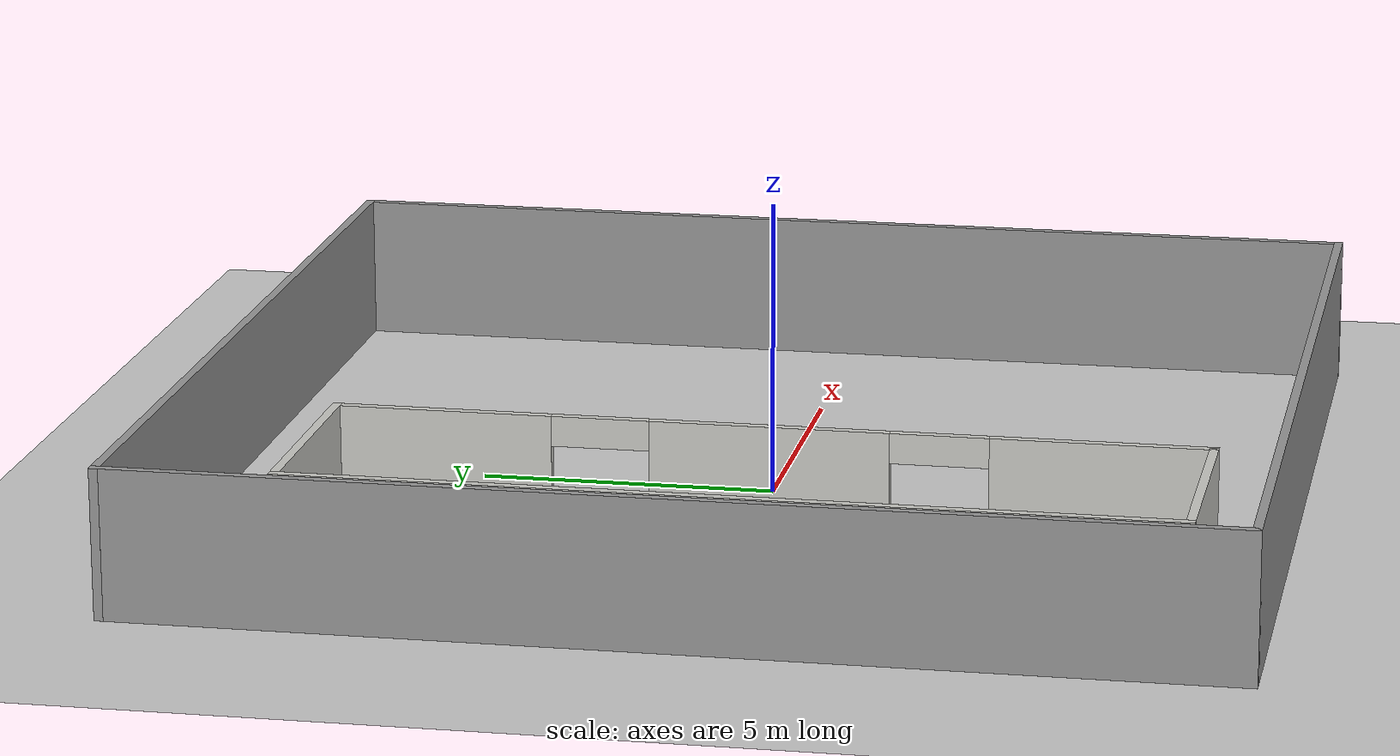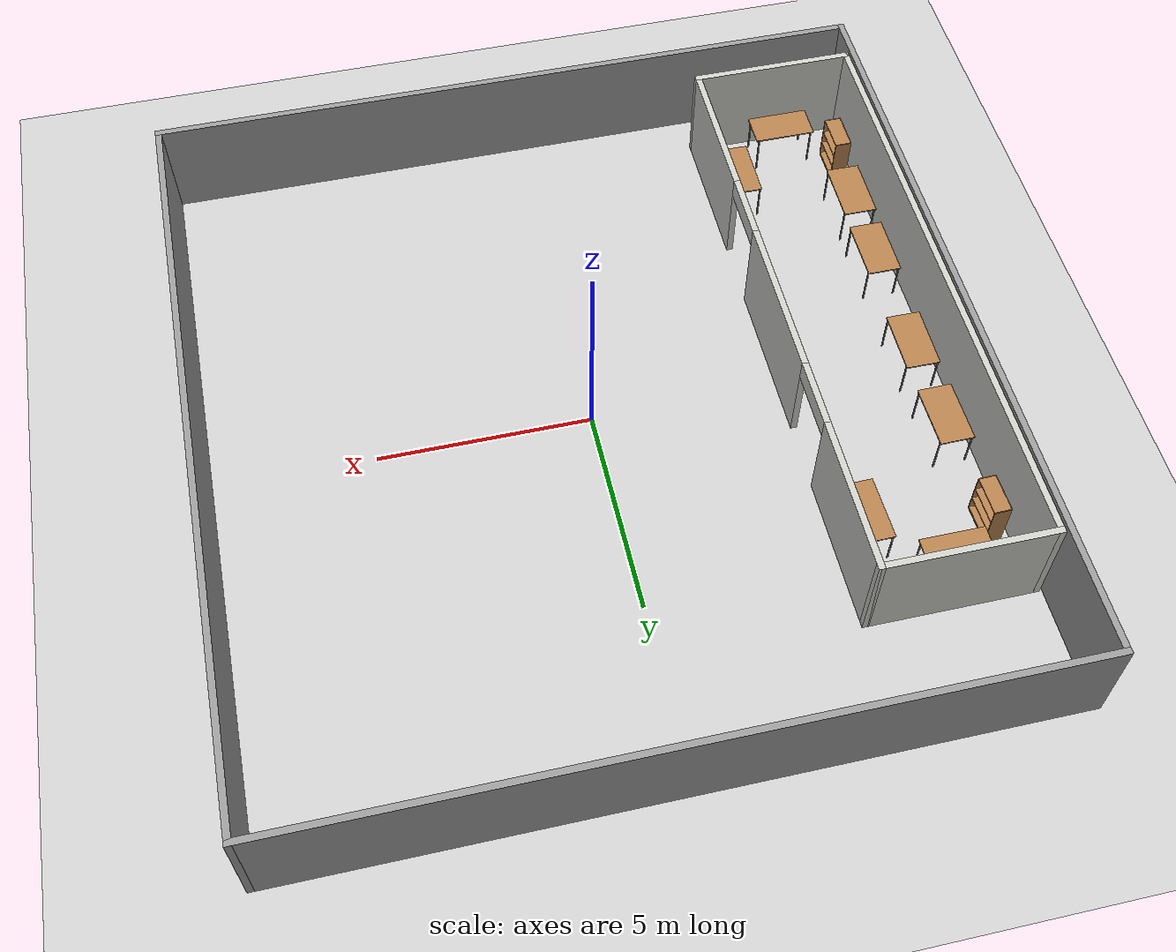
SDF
<sdf version="1.7">
 <world name="default">
  <light name="sun" type="directional">
   <pose>0 0 10 0 -0 0</pose>
   <diffuse>0.8 0.8 0.8 1</diffuse>
   <specular>0.2 0.2 0.2 1</specular>
   <attenuation>
    <range>1000</range>
    <constant>0.9</constant>
    <linear>0.01</linear>
    <quadratic>0.001</quadratic>
   </attenuation>
   <direction>-0.5 0.1 -0.9</direction>
   <spot><inner_angle>0</inner_angle><outer_angle>0</outer_angle><falloff>0</falloff></spot>
  </light>
  <model name="ground_plane">
   <static>1</static>
   <link name="link">
    <collision name="collision">
     <geometry><plane><normal>0 0 1</normal><size>100 100</size></plane></geometry>
     <surface>
      <contact><collide_bitmask>65535</collide_bitmask></contact>
      <friction><ode><mu>100</mu><mu2>50</mu2></ode></friction>
     </surface>
    </collision>
    <visual name="visual">
     <cast_shadows>0</cast_shadows>
     <geometry><plane><normal>0 0 1</normal><size>100 100</size></plane></geometry>
     <material>
      <script><uri>file://media/materials/scripts/gazebo.material</uri><name>Gazebo/Grey</name></script>
     </material>
    </visual>
   </link>
  </model>
  <gravity>0 0 -9.8</gravity>
  <magnetic_field>6e-06 2.3e-05 -4.2e-05</magnetic_field>
  <atmosphere type="adiabatic"/>
  <physics type="ode">
   <max_step_size>0.001</max_step_size>
   <real_time_factor>1</real_time_factor>
   <real_time_update_rate>1000</real_time_update_rate>
  </physics>
  <scene><ambient>0.4 0.4 0.4 1</ambient><background>0.7 0.7 0.7 1</background><shadows>1</shadows></scene>
  <spherical_coordinates>
   <surface_model>EARTH_WGS84</surface_model>
   <latitude_deg>0</latitude_deg>
   <longitude_deg>0</longitude_deg>
   <elevation>0</elevation>
   <heading_deg>0</heading_deg>
  </spherical_coordinates>
  <model name="compoung">
   <pose>0.134 0.178 0 0 -0 0</pose>
   <link name="Wall_4">
    <collision name="Wall_4_Collision">
     <geometry><box><size>18.25 0.15 2.5</size></box></geometry>
     <pose>0 0 1.25 0 -0 0</pose>
    </collision>
    <visual name="Wall_4_Visual">
     <pose>0 0 1.25 0 -0 0</pose>
     <geometry><box><size>18.25 0.15 2.5</size></box></geometry>
     <material>
      <script><uri>file://media/materials/scripts/gazebo.material</uri><name>Gazebo/Grey</name></script>
      <ambient>1 1 1 1</ambient>
     </material>
     <meta><layer>0</layer></meta>
    </visual>
    <pose>-8.675 -0 0 0 -0 -1.5708</pose>
   </link>
   <link name="Wall_5">
    <collision name="Wall_5_Collision">
     <geometry><box><size>17.5 0.15 2.5</size></box></geometry>
     <pose>0 0 1.25 0 -0 0</pose>
    </collision>
    <visual name="Wall_5_Visual">
     <pose>0 0 1.25 0 -0 0</pose>
     <geometry><box><size>17.5 0.15 2.5</size></box></geometry>
     <material>
      <script><uri>file://media/materials/scripts/gazebo.material</uri><name>Gazebo/Grey</name></script>
      <ambient>1 1 1 1</ambient>
     </material>
     <meta><layer>0</layer></meta>
    </visual>
    <pose>0 -9.05 0 0 -0 0</pose>
   </link>
   <link name="Wall_6">
    <collision name="Wall_6_Collision">
     <geometry><box><size>18.25 0.15 2.5</size></box></geometry>
     <pose>0 0 1.25 0 -0 0</pose>
    </collision>
    <visual name="Wall_6_Visual">
     <pose>0 0 1.25 0 -0 0</pose>
     <geometry><box><size>18.25 0.15 2.5</size></box></geometry>
     <material>
      <script><uri>file://media/materials/scripts/gazebo.material</uri><name>Gazebo/Grey</name></script>
      <ambient>1 1 1 1</ambient>
     </material>
     <meta><layer>0</layer></meta>
    </visual>
    <pose>8.675 -0 0 0 -0 1.5708</pose>
   </link>
   <link name="Wall_7">
    <collision name="Wall_7_Collision">
     <geometry><box><size>17.5005 0.15 2.5</size></box></geometry>
     <pose>0 0 1.25 0 -0 0</pose>
    </collision>
    <visual name="Wall_7_Visual">
     <pose>0 0 1.25 0 -0 0</pose>
     <geometry><box><size>17.5005 0.15 2.5</size></box></geometry>
     <material>
      <script><uri>file://media/materials/scripts/gazebo.material</uri><name>Gazebo/Grey</name></script>
      <ambient>1 1 1 1</ambient>
     </material>
     <meta><layer>0</layer></meta>
    </visual>
    <pose>0 9.05 0 0 -0 3.14159</pose>
   </link>
   <static>1</static>
  </model>
  <model name="lab_2">
   <pose>-6.40763 -0.724912 0 0 -0 0</pose>
   <link name="Wall_10">
    <collision name="Wall_10_Collision">
     <geometry><box><size>4 0.15 2.5</size></box></geometry>
     <pose>0 0 1.25 0 -0 0</pose>
    </collision>
    <visual name="Wall_10_Visual">
     <pose>0 0 1.25 0 -0 0</pose>
     <geometry><box><size>4 0.15 2.5</size></box></geometry>
     <material>
      <script><uri>file://media/materials/scripts/gazebo.material</uri><name>Gazebo/CeilingTiled</name></script>
      <ambient>1 1 1 1</ambient>
     </material>
     <meta><layer>0</layer></meta>
    </visual>
    <pose>-8.7e-05 -7.125 0 0 -0 3.14159</pose>
   </link>
   <link name="Wall_11">
    <collision name="Wall_11_Collision">
     <geometry><box><size>14.4 0.15 2.5</size></box></geometry>
     <pose>0 0 1.25 0 -0 0</pose>
    </collision>
    <visual name="Wall_11_Visual">
     <pose>0 0 1.25 0 -0 0</pose>
     <geometry><box><size>14.4 0.15 2.5</size></box></geometry>
     <material>
      <script><uri>file://media/materials/scripts/gazebo.material</uri><name>Gazebo/CeilingTiled</name></script>
      <ambient>1 1 1 1</ambient>
     </material>
     <meta><layer>0</layer></meta>
    </visual>
    <pose>-1.92509 -2e-06 0 0 -0 1.5708</pose>
   </link>
   <link name="Wall_13">
    <pose>1.92491 -2e-06 0 0 -0 -1.5708</pose>
    <visual name="Wall_13_Visual_0">
     <pose>-5.37609 0 1.25 0 -0 0</pose>
     <geometry><box><size>3.64782 0.15 2.5</size></box></geometry>
     <material>
      <script><uri>file://media/materials/scripts/gazebo.material</uri><name>Gazebo/CeilingTiled</name></script>
      <ambient>1 1 1 1</ambient>
     </material>
     <meta><layer>0</layer></meta>
    </visual>
    <collision name="Wall_13_Collision_0">
     <geometry><box><size>3.64782 0.15 2.5</size></box></geometry>
     <pose>-5.37609 0 1.25 0 -0 0</pose>
    </collision>
    <visual name="Wall_13_Visual_1">
     <pose>0.0025 0 1.25 0 -0 0</pose>
     <geometry><box><size>3.90937 0.15 2.5</size></box></geometry>
     <material>
      <script><uri>file://media/materials/scripts/gazebo.material</uri><name>Gazebo/CeilingTiled</name></script>
      <ambient>1 1 1 1</ambient>
     </material>
     <meta><layer>0</layer></meta>
    </visual>
    <collision name="Wall_13_Collision_1">
     <geometry><box><size>3.90937 0.15 2.5</size></box></geometry>
     <pose>0.0025 0 1.25 0 -0 0</pose>
    </collision>
    <visual name="Wall_13_Visual_2">
     <pose>5.37859 0 1.25 0 -0 0</pose>
     <geometry><box><size>3.64282 0.15 2.5</size></box></geometry>
     <material>
      <script><uri>file://media/materials/scripts/gazebo.material</uri><name>Gazebo/CeilingTiled</name></script>
      <ambient>1 1 1 1</ambient>
     </material>
     <meta><layer>0</layer></meta>
    </visual>
    <collision name="Wall_13_Collision_2">
     <geometry><box><size>3.64282 0.15 2.5</size></box></geometry>
     <pose>5.37859 0 1.25 0 -0 0</pose>
    </collision>
    <visual name="Wall_13_Visual_3">
     <pose>-2.75218 0 2.25 0 -0 0</pose>
     <geometry><box><size>1.6 0.15 0.5</size></box></geometry>
     <material>
      <script><uri>file://media/materials/scripts/gazebo.material</uri><name>Gazebo/CeilingTiled</name></script>
      <ambient>1 1 1 1</ambient>
     </material>
     <meta><layer>0</layer></meta>
    </visual>
    <collision name="Wall_13_Collision_3">
     <geometry><box><size>1.6 0.15 0.5</size></box></geometry>
     <pose>-2.75218 0 2.25 0 -0 0</pose>
    </collision>
    <visual name="Wall_13_Visual_4">
     <pose>2.75719 0 2.25 0 -0 0</pose>
     <geometry><box><size>1.6 0.15 0.5</size></box></geometry>
     <material>
      <script><uri>file://media/materials/scripts/gazebo.material</uri><name>Gazebo/CeilingTiled</name></script>
      <ambient>1 1 1 1</ambient>
     </material>
     <meta><layer>0</layer></meta>
    </visual>
    <collision name="Wall_13_Collision_4">
     <geometry><box><size>1.6 0.15 0.5</size></box></geometry>
     <pose>2.75719 0 2.25 0 -0 0</pose>
    </collision>
   </link>
   <link name="Wall_4">
    <collision name="Wall_4_Collision">
     <geometry><box><size>4 0.15 2.5</size></box></geometry>
     <pose>0 0 1.25 0 -0 0</pose>
    </collision>
    <visual name="Wall_4_Visual">
     <pose>0 0 1.25 0 -0 0</pose>
     <geometry><box><size>4 0.15 2.5</size></box></geometry>
     <material>
      <script><uri>file://media/materials/scripts/gazebo.material</uri><name>Gazebo/CeilingTiled</name></script>
      <ambient>1 1 1 1</ambient>
     </material>
     <meta><layer>0</layer></meta>
    </visual>
    <pose>8.4e-05 7.1249 0 0 -0 5.2e-05</pose>
   </link>
   <static>1</static>
  </model>
  <model name="table">
   <static>1</static>
   <link name="link">
    <collision name="surface">
     <pose>0 0 1 0 -0 0</pose>
     <geometry><box><size>1.5 0.8 0.03</size></box></geometry>
     <surface><friction><ode><mu>0.6</mu><mu2>0.6</mu2></ode></friction></surface>
    </collision>
    <visual name="visual1">
     <pose>0 0 1 0 -0 0</pose>
     <geometry><box><size>1.5 0.8 0.03</size></box></geometry>
     <material>
      <script><uri>file://media/materials/scripts/gazebo.material</uri><name>Gazebo/Wood</name></script>
     </material>
    </visual>
    <collision name="front_left_leg">
     <pose>0.68 0.38 0.5 0 -0 0</pose>
     <geometry><cylinder><radius>0.02</radius><length>1</length></cylinder></geometry>
    </collision>
    <visual name="front_left_leg">
     <pose>0.68 0.38 0.5 0 -0 0</pose>
     <geometry><cylinder><radius>0.02</radius><length>1</length></cylinder></geometry>
     <material>
      <script><uri>file://media/materials/scripts/gazebo.material</uri><name>Gazebo/Grey</name></script>
     </material>
    </visual>
    <collision name="front_right_leg">
     <pose>0.68 -0.38 0.5 0 -0 0</pose>
     <geometry><cylinder><radius>0.02</radius><length>1</length></cylinder></geometry>
    </collision>
    <visual name="front_right_leg">
     <pose>0.68 -0.38 0.5 0 -0 0</pose>
     <geometry><cylinder><radius>0.02</radius><length>1</length></cylinder></geometry>
     <material>
      <script><uri>file://media/materials/scripts/gazebo.material</uri><name>Gazebo/Grey</name></script>
     </material>
    </visual>
    <collision name="back_right_leg">
     <pose>-0.68 -0.38 0.5 0 -0 0</pose>
     <geometry><cylinder><radius>0.02</radius><length>1</length></cylinder></geometry>
    </collision>
    <visual name="back_right_leg">
     <pose>-0.68 -0.38 0.5 0 -0 0</pose>
     <geometry><cylinder><radius>0.02</radius><length>1</length></cylinder></geometry>
     <material>
      <script><uri>file://media/materials/scripts/gazebo.material</uri><name>Gazebo/Grey</name></script>
     </material>
    </visual>
    <collision name="back_left_leg">
     <pose>-0.68 0.38 0.5 0 -0 0</pose>
     <geometry><cylinder><radius>0.02</radius><length>1</length></cylinder></geometry>
    </collision>
    <visual name="back_left_leg">
     <pose>-0.68 0.38 0.5 0 -0 0</pose>
     <geometry><cylinder><radius>0.02</radius><length>1</length></cylinder></geometry>
     <material>
      <script><uri>file://media/materials/scripts/gazebo.material</uri><name>Gazebo/Grey</name></script>
     </material>
    </visual>
   </link>
   <pose>-6.69343 5.61622 0 0 -0 0</pose>
  </model>
  <model name="table_0">
   <static>1</static>
   <link name="link">
    <collision name="surface">
     <pose>0 0 1 0 -0 0</pose>
     <geometry><box><size>1.5 0.8 0.03</size></box></geometry>
     <surface><friction><ode><mu>0.6</mu><mu2>0.6</mu2></ode></friction></surface>
    </collision>
    <visual name="visual1">
     <pose>0 0 1 0 -0 0</pose>
     <geometry><box><size>1.5 0.8 0.03</size></box></geometry>
     <material>
      <script><uri>file://media/materials/scripts/gazebo.material</uri><name>Gazebo/Wood</name></script>
     </material>
    </visual>
    <collision name="front_left_leg">
     <pose>0.68 0.38 0.5 0 -0 0</pose>
     <geometry><cylinder><radius>0.02</radius><length>1</length></cylinder></geometry>
    </collision>
    <visual name="front_left_leg">
     <pose>0.68 0.38 0.5 0 -0 0</pose>
     <geometry><cylinder><radius>0.02</radius><length>1</length></cylinder></geometry>
     <material>
      <script><uri>file://media/materials/scripts/gazebo.material</uri><name>Gazebo/Grey</name></script>
     </material>
    </visual>
    <collision name="front_right_leg">
     <pose>0.68 -0.38 0.5 0 -0 0</pose>
     <geometry><cylinder><radius>0.02</radius><length>1</length></cylinder></geometry>
    </collision>
    <visual name="front_right_leg">
     <pose>0.68 -0.38 0.5 0 -0 0</pose>
     <geometry><cylinder><radius>0.02</radius><length>1</length></cylinder></geometry>
     <material>
      <script><uri>file://media/materials/scripts/gazebo.material</uri><name>Gazebo/Grey</name></script>
     </material>
    </visual>
    <collision name="back_right_leg">
     <pose>-0.68 -0.38 0.5 0 -0 0</pose>
     <geometry><cylinder><radius>0.02</radius><length>1</length></cylinder></geometry>
    </collision>
    <visual name="back_right_leg">
     <pose>-0.68 -0.38 0.5 0 -0 0</pose>
     <geometry><cylinder><radius>0.02</radius><length>1</length></cylinder></geometry>
     <material>
      <script><uri>file://media/materials/scripts/gazebo.material</uri><name>Gazebo/Grey</name></script>
     </material>
    </visual>
    <collision name="back_left_leg">
     <pose>-0.68 0.38 0.5 0 -0 0</pose>
     <geometry><cylinder><radius>0.02</radius><length>1</length></cylinder></geometry>
    </collision>
    <visual name="back_left_leg">
     <pose>-0.68 0.38 0.5 0 -0 0</pose>
     <geometry><cylinder><radius>0.02</radius><length>1</length></cylinder></geometry>
     <material>
      <script><uri>file://media/materials/scripts/gazebo.material</uri><name>Gazebo/Grey</name></script>
     </material>
    </visual>
   </link>
   <pose>-6.58156 -7.19178 0 0 -0 0</pose>
  </model>
  <model name="table_1">
   <static>1</static>
   <link name="link">
    <collision name="surface">
     <pose>0 0 1 0 -0 0</pose>
     <geometry><box><size>1.5 0.8 0.03</size></box></geometry>
     <surface><friction><ode><mu>0.6</mu><mu2>0.6</mu2></ode></friction></surface>
    </collision>
    <visual name="visual1">
     <pose>0 0 1 0 -0 0</pose>
     <geometry><box><size>1.5 0.8 0.03</size></box></geometry>
     <material>
      <script><uri>file://media/materials/scripts/gazebo.material</uri><name>Gazebo/Wood</name></script>
     </material>
    </visual>
    <collision name="front_left_leg">
     <pose>0.68 0.38 0.5 0 -0 0</pose>
     <geometry><cylinder><radius>0.02</radius><length>1</length></cylinder></geometry>
    </collision>
    <visual name="front_left_leg">
     <pose>0.68 0.38 0.5 0 -0 0</pose>
     <geometry><cylinder><radius>0.02</radius><length>1</length></cylinder></geometry>
     <material>
      <script><uri>file://media/materials/scripts/gazebo.material</uri><name>Gazebo/Grey</name></script>
     </material>
    </visual>
    <collision name="front_right_leg">
     <pose>0.68 -0.38 0.5 0 -0 0</pose>
     <geometry><cylinder><radius>0.02</radius><length>1</length></cylinder></geometry>
    </collision>
    <visual name="front_right_leg">
     <pose>0.68 -0.38 0.5 0 -0 0</pose>
     <geometry><cylinder><radius>0.02</radius><length>1</length></cylinder></geometry>
     <material>
      <script><uri>file://media/materials/scripts/gazebo.material</uri><name>Gazebo/Grey</name></script>
     </material>
    </visual>
    <collision name="back_right_leg">
     <pose>-0.68 -0.38 0.5 0 -0 0</pose>
     <geometry><cylinder><radius>0.02</radius><length>1</length></cylinder></geometry>
    </collision>
    <visual name="back_right_leg">
     <pose>-0.68 -0.38 0.5 0 -0 0</pose>
     <geometry><cylinder><radius>0.02</radius><length>1</length></cylinder></geometry>
     <material>
      <script><uri>file://media/materials/scripts/gazebo.material</uri><name>Gazebo/Grey</name></script>
     </material>
    </visual>
    <collision name="back_left_leg">
     <pose>-0.68 0.38 0.5 0 -0 0</pose>
     <geometry><cylinder><radius>0.02</radius><length>1</length></cylinder></geometry>
    </collision>
    <visual name="back_left_leg">
     <pose>-0.68 0.38 0.5 0 -0 0</pose>
     <geometry><cylinder><radius>0.02</radius><length>1</length></cylinder></geometry>
     <material>
      <script><uri>file://media/materials/scripts/gazebo.material</uri><name>Gazebo/Grey</name></script>
     </material>
    </visual>
   </link>
   <pose>-7.62841 2.25092 0 0 0 -1.55574</pose>
  </model>
  <model name="table_2">
   <static>1</static>
   <link name="link">
    <collision name="surface">
     <pose>0 0 1 0 -0 0</pose>
     <geometry><box><size>1.5 0.8 0.03</size></box></geometry>
     <surface><friction><ode><mu>0.6</mu><mu2>0.6</mu2></ode></friction></surface>
    </collision>
    <visual name="visual1">
     <pose>0 0 1 0 -0 0</pose>
     <geometry><box><size>1.5 0.8 0.03</size></box></geometry>
     <material>
      <script><uri>file://media/materials/scripts/gazebo.material</uri><name>Gazebo/Wood</name></script>
     </material>
    </visual>
    <collision name="front_left_leg">
     <pose>0.68 0.38 0.5 0 -0 0</pose>
     <geometry><cylinder><radius>0.02</radius><length>1</length></cylinder></geometry>
    </collision>
    <visual name="front_left_leg">
     <pose>0.68 0.38 0.5 0 -0 0</pose>
     <geometry><cylinder><radius>0.02</radius><length>1</length></cylinder></geometry>
     <material>
      <script><uri>file://media/materials/scripts/gazebo.material</uri><name>Gazebo/Grey</name></script>
     </material>
    </visual>
    <collision name="front_right_leg">
     <pose>0.68 -0.38 0.5 0 -0 0</pose>
     <geometry><cylinder><radius>0.02</radius><length>1</length></cylinder></geometry>
    </collision>
    <visual name="front_right_leg">
     <pose>0.68 -0.38 0.5 0 -0 0</pose>
     <geometry><cylinder><radius>0.02</radius><length>1</length></cylinder></geometry>
     <material>
      <script><uri>file://media/materials/scripts/gazebo.material</uri><name>Gazebo/Grey</name></script>
     </material>
    </visual>
    <collision name="back_right_leg">
     <pose>-0.68 -0.38 0.5 0 -0 0</pose>
     <geometry><cylinder><radius>0.02</radius><length>1</length></cylinder></geometry>
    </collision>
    <visual name="back_right_leg">
     <pose>-0.68 -0.38 0.5 0 -0 0</pose>
     <geometry><cylinder><radius>0.02</radius><length>1</length></cylinder></geometry>
     <material>
      <script><uri>file://media/materials/scripts/gazebo.material</uri><name>Gazebo/Grey</name></script>
     </material>
    </visual>
    <collision name="back_left_leg">
     <pose>-0.68 0.38 0.5 0 -0 0</pose>
     <geometry><cylinder><radius>0.02</radius><length>1</length></cylinder></geometry>
    </collision>
    <visual name="back_left_leg">
     <pose>-0.68 0.38 0.5 0 -0 0</pose>
     <geometry><cylinder><radius>0.02</radius><length>1</length></cylinder></geometry>
     <material>
      <script><uri>file://media/materials/scripts/gazebo.material</uri><name>Gazebo/Grey</name></script>
     </material>
    </visual>
   </link>
   <pose>-7.60445 0.104452 0 0 0 -1.58035</pose>
  </model>
  <model name="table_3">
   <static>1</static>
   <link name="link">
    <collision name="surface">
     <pose>0 0 1 0 -0 0</pose>
     <geometry><box><size>1.5 0.8 0.03</size></box></geometry>
     <surface><friction><ode><mu>0.6</mu><mu2>0.6</mu2></ode></friction></surface>
    </collision>
    <visual name="visual1">
     <pose>0 0 1 0 -0 0</pose>
     <geometry><box><size>1.5 0.8 0.03</size></box></geometry>
     <material>
      <script><uri>file://media/materials/scripts/gazebo.material</uri><name>Gazebo/Wood</name></script>
     </material>
    </visual>
    <collision name="front_left_leg">
     <pose>0.68 0.38 0.5 0 -0 0</pose>
     <geometry><cylinder><radius>0.02</radius><length>1</length></cylinder></geometry>
    </collision>
    <visual name="front_left_leg">
     <pose>0.68 0.38 0.5 0 -0 0</pose>
     <geometry><cylinder><radius>0.02</radius><length>1</length></cylinder></geometry>
     <material>
      <script><uri>file://media/materials/scripts/gazebo.material</uri><name>Gazebo/Grey</name></script>
     </material>
    </visual>
    <collision name="front_right_leg">
     <pose>0.68 -0.38 0.5 0 -0 0</pose>
     <geometry><cylinder><radius>0.02</radius><length>1</length></cylinder></geometry>
    </collision>
    <visual name="front_right_leg">
     <pose>0.68 -0.38 0.5 0 -0 0</pose>
     <geometry><cylinder><radius>0.02</radius><length>1</length></cylinder></geometry>
     <material>
      <script><uri>file://media/materials/scripts/gazebo.material</uri><name>Gazebo/Grey</name></script>
     </material>
    </visual>
    <collision name="back_right_leg">
     <pose>-0.68 -0.38 0.5 0 -0 0</pose>
     <geometry><cylinder><radius>0.02</radius><length>1</length></cylinder></geometry>
    </collision>
    <visual name="back_right_leg">
     <pose>-0.68 -0.38 0.5 0 -0 0</pose>
     <geometry><cylinder><radius>0.02</radius><length>1</length></cylinder></geometry>
     <material>
      <script><uri>file://media/materials/scripts/gazebo.material</uri><name>Gazebo/Grey</name></script>
     </material>
    </visual>
    <collision name="back_left_leg">
     <pose>-0.68 0.38 0.5 0 -0 0</pose>
     <geometry><cylinder><radius>0.02</radius><length>1</length></cylinder></geometry>
    </collision>
    <visual name="back_left_leg">
     <pose>-0.68 0.38 0.5 0 -0 0</pose>
     <geometry><cylinder><radius>0.02</radius><length>1</length></cylinder></geometry>
     <material>
      <script><uri>file://media/materials/scripts/gazebo.material</uri><name>Gazebo/Grey</name></script>
     </material>
    </visual>
   </link>
   <pose>-7.63166 -2.7542 0 0 -0 1.56768</pose>
  </model>
  <model name="table_4">
   <static>1</static>
   <link name="link">
    <collision name="surface">
     <pose>0 0 1 0 -0 0</pose>
     <geometry><box><size>1.5 0.8 0.03</size></box></geometry>
     <surface><friction><ode><mu>0.6</mu><mu2>0.6</mu2></ode></friction></surface>
    </collision>
    <visual name="visual1">
     <pose>0 0 1 0 -0 0</pose>
     <geometry><box><size>1.5 0.8 0.03</size></box></geometry>
     <material>
      <script><uri>file://media/materials/scripts/gazebo.material</uri><name>Gazebo/Wood</name></script>
     </material>
    </visual>
    <collision name="front_left_leg">
     <pose>0.68 0.38 0.5 0 -0 0</pose>
     <geometry><cylinder><radius>0.02</radius><length>1</length></cylinder></geometry>
    </collision>
    <visual name="front_left_leg">
     <pose>0.68 0.38 0.5 0 -0 0</pose>
     <geometry><cylinder><radius>0.02</radius><length>1</length></cylinder></geometry>
     <material>
      <script><uri>file://media/materials/scripts/gazebo.material</uri><name>Gazebo/Grey</name></script>
     </material>
    </visual>
    <collision name="front_right_leg">
     <pose>0.68 -0.38 0.5 0 -0 0</pose>
     <geometry><cylinder><radius>0.02</radius><length>1</length></cylinder></geometry>
    </collision>
    <visual name="front_right_leg">
     <pose>0.68 -0.38 0.5 0 -0 0</pose>
     <geometry><cylinder><radius>0.02</radius><length>1</length></cylinder></geometry>
     <material>
      <script><uri>file://media/materials/scripts/gazebo.material</uri><name>Gazebo/Grey</name></script>
     </material>
    </visual>
    <collision name="back_right_leg">
     <pose>-0.68 -0.38 0.5 0 -0 0</pose>
     <geometry><cylinder><radius>0.02</radius><length>1</length></cylinder></geometry>
    </collision>
    <visual name="back_right_leg">
     <pose>-0.68 -0.38 0.5 0 -0 0</pose>
     <geometry><cylinder><radius>0.02</radius><length>1</length></cylinder></geometry>
     <material>
      <script><uri>file://media/materials/scripts/gazebo.material</uri><name>Gazebo/Grey</name></script>
     </material>
    </visual>
    <collision name="back_left_leg">
     <pose>-0.68 0.38 0.5 0 -0 0</pose>
     <geometry><cylinder><radius>0.02</radius><length>1</length></cylinder></geometry>
    </collision>
    <visual name="back_left_leg">
     <pose>-0.68 0.38 0.5 0 -0 0</pose>
     <geometry><cylinder><radius>0.02</radius><length>1</length></cylinder></geometry>
     <material>
      <script><uri>file://media/materials/scripts/gazebo.material</uri><name>Gazebo/Grey</name></script>
     </material>
    </visual>
   </link>
   <pose>-7.65873 -4.68136 0 0 0 -1.57516</pose>
  </model>
  <model name="bookshelf">
   <static>1</static>
   <link name="link">
    <inertial><mass>1</mass></inertial>
    <collision name="back">
     <pose>0 0.005 0.6 0 -0 0</pose>
     <geometry><box><size>0.9 0.01 1.2</size></box></geometry>
    </collision>
    <visual name="visual1">
     <pose>0 0.005 0.6 0 -0 0</pose>
     <geometry><box><size>0.9 0.01 1.2</size></box></geometry>
     <material>
      <script><uri>file://media/materials/scripts/gazebo.material</uri><name>Gazebo/Wood</name></script>
     </material>
    </visual>
    <collision name="left_side">
     <pose>0.45 -0.195 0.6 0 -0 0</pose>
     <geometry><box><size>0.02 0.4 1.2</size></box></geometry>
    </collision>
    <visual name="visual2">
     <pose>0.45 -0.195 0.6 0 -0 0</pose>
     <geometry><box><size>0.02 0.4 1.2</size></box></geometry>
     <material>
      <script><uri>file://media/materials/scripts/gazebo.material</uri><name>Gazebo/Wood</name></script>
     </material>
    </visual>
    <collision name="right_side">
     <pose>-0.45 -0.195 0.6 0 -0 0</pose>
     <geometry><box><size>0.02 0.4 1.2</size></box></geometry>
    </collision>
    <visual name="visual3">
     <pose>-0.45 -0.195 0.6 0 -0 0</pose>
     <geometry><box><size>0.02 0.4 1.2</size></box></geometry>
     <material>
      <script><uri>file://media/materials/scripts/gazebo.material</uri><name>Gazebo/Wood</name></script>
     </material>
    </visual>
    <collision name="bottom">
     <pose>0 -0.195 0.03 0 -0 0</pose>
     <geometry><box><size>0.88 0.4 0.06</size></box></geometry>
    </collision>
    <visual name="visual4">
     <pose>0 -0.195 0.03 0 -0 0</pose>
     <geometry><box><size>0.88 0.4 0.06</size></box></geometry>
     <material>
      <script><uri>file://media/materials/scripts/gazebo.material</uri><name>Gazebo/Wood</name></script>
     </material>
    </visual>
    <collision name="top">
     <pose>0 -0.195 1.19 0 -0 0</pose>
     <geometry><box><size>0.88 0.4 0.02</size></box></geometry>
    </collision>
    <visual name="visual5">
     <pose>0 -0.195 1.19 0 -0 0</pose>
     <geometry><box><size>0.88 0.4 0.02</size></box></geometry>
     <material>
      <script><uri>file://media/materials/scripts/gazebo.material</uri><name>Gazebo/Wood</name></script>
     </material>
    </visual>
    <collision name="low_shelf">
     <pose>0 -0.195 0.43 0 -0 0</pose>
     <geometry><box><size>0.88 0.4 0.02</size></box></geometry>
    </collision>
    <visual name="visual6">
     <pose>0 -0.195 0.43 0 -0 0</pose>
     <geometry><box><size>0.88 0.4 0.02</size></box></geometry>
     <material>
      <script><uri>file://media/materials/scripts/gazebo.material</uri><name>Gazebo/Wood</name></script>
     </material>
    </visual>
    <collision name="high_shelf">
     <pose>0 -0.195 0.8 0 -0 0</pose>
     <geometry><box><size>0.88 0.4 0.02</size></box></geometry>
    </collision>
    <visual name="visual7">
     <pose>0 -0.195 0.8 0 -0 0</pose>
     <geometry><box><size>0.88 0.4 0.02</size></box></geometry>
     <material>
      <script><uri>file://media/materials/scripts/gazebo.material</uri><name>Gazebo/Wood</name></script>
     </material>
    </visual>
   </link>
   <pose>-8.05825 4.59284 0 0 -0 1.59919</pose>
  </model>
  <model name="bookshelf_0">
   <static>1</static>
   <link name="link">
    <inertial><mass>1</mass></inertial>
    <collision name="back">
     <pose>0 0.005 0.6 0 -0 0</pose>
     <geometry><box><size>0.9 0.01 1.2</size></box></geometry>
    </collision>
    <visual name="visual1">
     <pose>0 0.005 0.6 0 -0 0</pose>
     <geometry><box><size>0.9 0.01 1.2</size></box></geometry>
     <material>
      <script><uri>file://media/materials/scripts/gazebo.material</uri><name>Gazebo/Wood</name></script>
     </material>
    </visual>
    <collision name="left_side">
     <pose>0.45 -0.195 0.6 0 -0 0</pose>
     <geometry><box><size>0.02 0.4 1.2</size></box></geometry>
    </collision>
    <visual name="visual2">
     <pose>0.45 -0.195 0.6 0 -0 0</pose>
     <geometry><box><size>0.02 0.4 1.2</size></box></geometry>
     <material>
      <script><uri>file://media/materials/scripts/gazebo.material</uri><name>Gazebo/Wood</name></script>
     </material>
    </visual>
    <collision name="right_side">
     <pose>-0.45 -0.195 0.6 0 -0 0</pose>
     <geometry><box><size>0.02 0.4 1.2</size></box></geometry>
    </collision>
    <visual name="visual3">
     <pose>-0.45 -0.195 0.6 0 -0 0</pose>
     <geometry><box><size>0.02 0.4 1.2</size></box></geometry>
     <material>
      <script><uri>file://media/materials/scripts/gazebo.material</uri><name>Gazebo/Wood</name></script>
     </material>
    </visual>
    <collision name="bottom">
     <pose>0 -0.195 0.03 0 -0 0</pose>
     <geometry><box><size>0.88 0.4 0.06</size></box></geometry>
    </collision>
    <visual name="visual4">
     <pose>0 -0.195 0.03 0 -0 0</pose>
     <geometry><box><size>0.88 0.4 0.06</size></box></geometry>
     <material>
      <script><uri>file://media/materials/scripts/gazebo.material</uri><name>Gazebo/Wood</name></script>
     </material>
    </visual>
    <collision name="top">
     <pose>0 -0.195 1.19 0 -0 0</pose>
     <geometry><box><size>0.88 0.4 0.02</size></box></geometry>
    </collision>
    <visual name="visual5">
     <pose>0 -0.195 1.19 0 -0 0</pose>
     <geometry><box><size>0.88 0.4 0.02</size></box></geometry>
     <material>
      <script><uri>file://media/materials/scripts/gazebo.material</uri><name>Gazebo/Wood</name></script>
     </material>
    </visual>
    <collision name="low_shelf">
     <pose>0 -0.195 0.43 0 -0 0</pose>
     <geometry><box><size>0.88 0.4 0.02</size></box></geometry>
    </collision>
    <visual name="visual6">
     <pose>0 -0.195 0.43 0 -0 0</pose>
     <geometry><box><size>0.88 0.4 0.02</size></box></geometry>
     <material>
      <script><uri>file://media/materials/scripts/gazebo.material</uri><name>Gazebo/Wood</name></script>
     </material>
    </visual>
    <collision name="high_shelf">
     <pose>0 -0.195 0.8 0 -0 0</pose>
     <geometry><box><size>0.88 0.4 0.02</size></box></geometry>
    </collision>
    <visual name="visual7">
     <pose>0 -0.195 0.8 0 -0 0</pose>
     <geometry><box><size>0.88 0.4 0.02</size></box></geometry>
     <material>
      <script><uri>file://media/materials/scripts/gazebo.material</uri><name>Gazebo/Wood</name></script>
     </material>
    </visual>
   </link>
   <pose>-8.06027 -6.49062 0 0 -0 1.57226</pose>
  </model>
  <model name="table_5">
   <static>1</static>
   <link name="link">
    <collision name="surface">
     <pose>0 0 1 0 -0 0</pose>
     <geometry><box><size>1.5 0.8 0.03</size></box></geometry>
     <surface><friction><ode><mu>0.6</mu><mu2>0.6</mu2></ode></friction></surface>
    </collision>
    <visual name="visual1">
     <pose>0 0 1 0 -0 0</pose>
     <geometry><box><size>1.5 0.8 0.03</size></box></geometry>
     <material>
      <script><uri>file://media/materials/scripts/gazebo.material</uri><name>Gazebo/Wood</name></script>
     </material>
    </visual>
    <collision name="front_left_leg">
     <pose>0.68 0.38 0.5 0 -0 0</pose>
     <geometry><cylinder><radius>0.02</radius><length>1</length></cylinder></geometry>
    </collision>
    <visual name="front_left_leg">
     <pose>0.68 0.38 0.5 0 -0 0</pose>
     <geometry><cylinder><radius>0.02</radius><length>1</length></cylinder></geometry>
     <material>
      <script><uri>file://media/materials/scripts/gazebo.material</uri><name>Gazebo/Grey</name></script>
     </material>
    </visual>
    <collision name="front_right_leg">
     <pose>0.68 -0.38 0.5 0 -0 0</pose>
     <geometry><cylinder><radius>0.02</radius><length>1</length></cylinder></geometry>
    </collision>
    <visual name="front_right_leg">
     <pose>0.68 -0.38 0.5 0 -0 0</pose>
     <geometry><cylinder><radius>0.02</radius><length>1</length></cylinder></geometry>
     <material>
      <script><uri>file://media/materials/scripts/gazebo.material</uri><name>Gazebo/Grey</name></script>
     </material>
    </visual>
    <collision name="back_right_leg">
     <pose>-0.68 -0.38 0.5 0 -0 0</pose>
     <geometry><cylinder><radius>0.02</radius><length>1</length></cylinder></geometry>
    </collision>
    <visual name="back_right_leg">
     <pose>-0.68 -0.38 0.5 0 -0 0</pose>
     <geometry><cylinder><radius>0.02</radius><length>1</length></cylinder></geometry>
     <material>
      <script><uri>file://media/materials/scripts/gazebo.material</uri><name>Gazebo/Grey</name></script>
     </material>
    </visual>
    <collision name="back_left_leg">
     <pose>-0.68 0.38 0.5 0 -0 0</pose>
     <geometry><cylinder><radius>0.02</radius><length>1</length></cylinder></geometry>
    </collision>
    <visual name="back_left_leg">
     <pose>-0.68 0.38 0.5 0 -0 0</pose>
     <geometry><cylinder><radius>0.02</radius><length>1</length></cylinder></geometry>
     <material>
      <script><uri>file://media/materials/scripts/gazebo.material</uri><name>Gazebo/Grey</name></script>
     </material>
    </visual>
   </link>
   <pose>-5.08456 4.29561 0 0 0 -1.54818</pose>
  </model>
  <model name="table_6">
   <static>1</static>
   <link name="link">
    <collision name="surface">
     <pose>0 0 1 0 -0 0</pose>
     <geometry><box><size>1.5 0.8 0.03</size></box></geometry>
     <surface><friction><ode><mu>0.6</mu><mu2>0.6</mu2></ode></friction></surface>
    </collision>
    <visual name="visual1">
     <pose>0 0 1 0 -0 0</pose>
     <geometry><box><size>1.5 0.8 0.03</size></box></geometry>
     <material>
      <script><uri>file://media/materials/scripts/gazebo.material</uri><name>Gazebo/Wood</name></script>
     </material>
    </visual>
    <collision name="front_left_leg">
     <pose>0.68 0.38 0.5 0 -0 0</pose>
     <geometry><cylinder><radius>0.02</radius><length>1</length></cylinder></geometry>
    </collision>
    <visual name="front_left_leg">
     <pose>0.68 0.38 0.5 0 -0 0</pose>
     <geometry><cylinder><radius>0.02</radius><length>1</length></cylinder></geometry>
     <material>
      <script><uri>file://media/materials/scripts/gazebo.material</uri><name>Gazebo/Grey</name></script>
     </material>
    </visual>
    <collision name="front_right_leg">
     <pose>0.68 -0.38 0.5 0 -0 0</pose>
     <geometry><cylinder><radius>0.02</radius><length>1</length></cylinder></geometry>
    </collision>
    <visual name="front_right_leg">
     <pose>0.68 -0.38 0.5 0 -0 0</pose>
     <geometry><cylinder><radius>0.02</radius><length>1</length></cylinder></geometry>
     <material>
      <script><uri>file://media/materials/scripts/gazebo.material</uri><name>Gazebo/Grey</name></script>
     </material>
    </visual>
    <collision name="back_right_leg">
     <pose>-0.68 -0.38 0.5 0 -0 0</pose>
     <geometry><cylinder><radius>0.02</radius><length>1</length></cylinder></geometry>
    </collision>
    <visual name="back_right_leg">
     <pose>-0.68 -0.38 0.5 0 -0 0</pose>
     <geometry><cylinder><radius>0.02</radius><length>1</length></cylinder></geometry>
     <material>
      <script><uri>file://media/materials/scripts/gazebo.material</uri><name>Gazebo/Grey</name></script>
     </material>
    </visual>
    <collision name="back_left_leg">
     <pose>-0.68 0.38 0.5 0 -0 0</pose>
     <geometry><cylinder><radius>0.02</radius><length>1</length></cylinder></geometry>
    </collision>
    <visual name="back_left_leg">
     <pose>-0.68 0.38 0.5 0 -0 0</pose>
     <geometry><cylinder><radius>0.02</radius><length>1</length></cylinder></geometry>
     <material>
      <script><uri>file://media/materials/scripts/gazebo.material</uri><name>Gazebo/Grey</name></script>
     </material>
    </visual>
   </link>
   <pose>-5.10294 -5.94339 0 0 -0 1.55861</pose>
  </model>
 </world>
</sdf>
